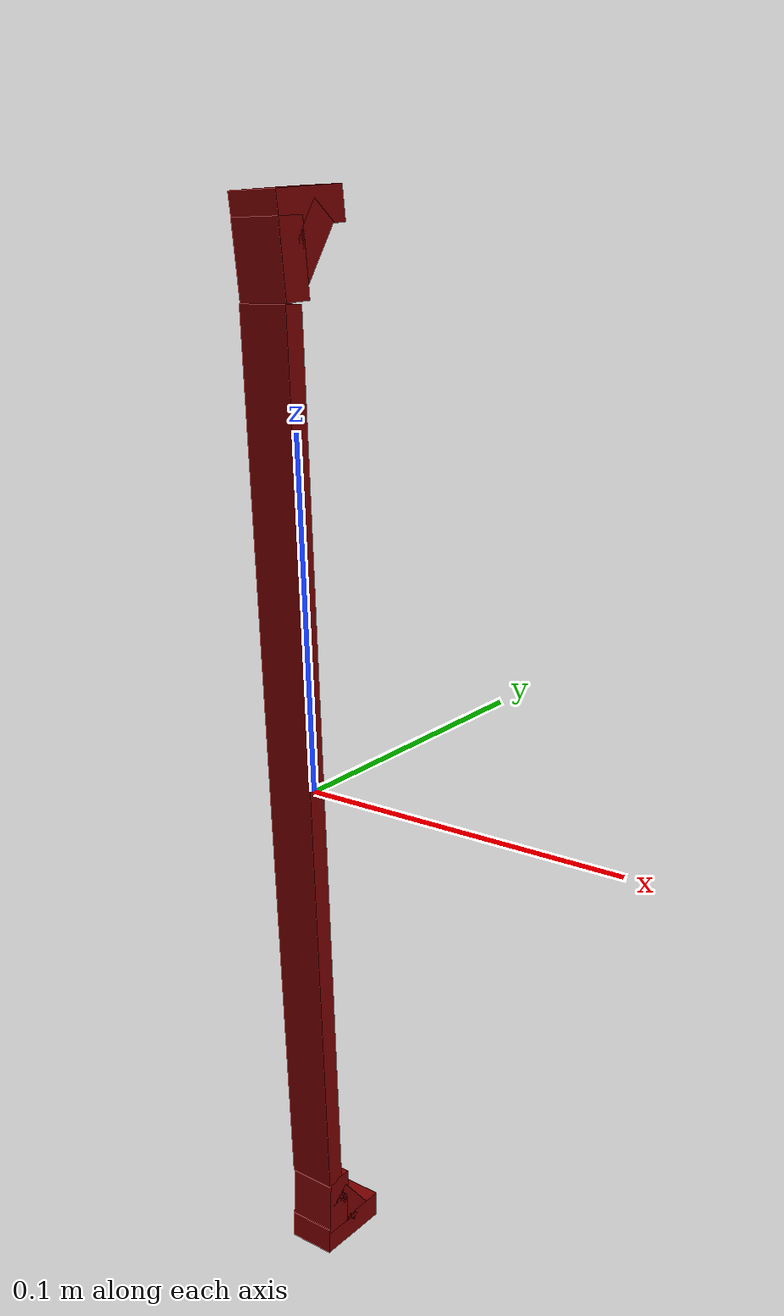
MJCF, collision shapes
<?xml version='1.0' encoding='UTF-8'?>
<mujoco model="model">
  <option timestep="0.002" gravity="0.0 0.0 -9.81"/>
  <compiler angle="radian"/>
  <asset>
    <mesh file="visuals/CabinetHandle022.obj" name="CabinetHandle022_vis"/>
    <texture file="visuals/T_BC001.png" name="tex" type="2d"/>
    <material name="mat" rgba="1 1 1 1.0" texture="tex" shininess="0.5" specular="0.3103448502657381"/>
  </asset>
  <default>
    <default class="visual">
      <geom conaffinity="0" contype="0" group="1" type="mesh"/>
    </default>
    <default class="collision">
      <geom group="0" rgba="0.5 0 0 0.5" density="1.0" solref="0.004 1" solimp="0.998 0.998 0.001"/>
    </default>
    <default class="spawn">
      <geom group="0" rgba="1 1 1 0.5" contype="0" conaffinity="0"/>
      <site group="0" rgba="1 1 1 0.5"/>
    </default>
    <default class="region">
      <geom group="1" conaffinity="0" contype="0" rgba="0 1 0 0" mass="0"/>
    </default>
  </default>
  <worldbody>
    <body>
      <body name="object">
        <geom mesh="CabinetHandle022_vis" type="mesh" solimp="0.998 0.998 0.001" solref="0.001 1" friction="0.95 0.3 0.1" class="visual" material="mat"/>
        <geom type="box" pos="0.0 -0.007515799719840288 0.0" size="0.007608635351061821 0.002940837061032653 0.13134601712226868" quat="1.0 0.0 0.0 0.0" class="collision"/>
        <geom type="box" pos="-2.9694646617311433e-20 -0.006477472372353077 0.1413654386997223" size="0.007608634885400534 0.004346541129052639 0.00958439614623785" quat="0.9993701577186584 0.03548698127269745 7.87969273667809e-18 2.277166564651398e-25" class="collision"/>
        <geom type="box" pos="-2.672512405293741e-18 0.0006776042282581329 0.15326763689517975" size="0.007608634885400534 0.004346540663391352 0.01228747796267271" quat="0.7410692572593689 -0.6714286208152771 1.603830415846416e-16 -1.0989087820322072e-17" class="collision"/>
        <geom type="box" pos="-7.93514826911214e-19 -0.00035437755286693573 0.14480537176132202" size="0.007608634885400534 0.004346541129052639 0.00958439614623785" quat="0.9513401389122009 -0.308142751455307 8.323219701939633e-17 -5.385120736419765e-18" class="collision"/>
        <geom type="box" pos="-3.402725322974168e-18 -0.006394913420081139 -0.1401718556880951" size="0.007608634885400534 0.004346541594713926 0.00958439614623785" quat="0.9989413022994995 -0.04600321128964424 2.5921823731078483e-17 -1.2831894644242968e-18" class="collision"/>
        <geom type="box" pos="-5.277049382594559e-19 0.00034737028181552887 -0.1531197875738144" size="0.007608634885400534 0.004346540663391352 0.01228747796267271" quat="0.6791898012161255 -0.7339627146720886 1.7325886882519302e-16 -1.1939366142912791e-17" class="collision"/>
        <geom type="box" pos="-2.1867230868166082e-18 -0.0006020534783601761 -0.14564825594425201" size="0.007608634885400534 0.004346541129052639 0.00958439614623785" quat="0.30554598569869995 -0.9521773457527161 2.1570550299200873e-16 -1.5167145661464138e-17" class="collision"/>
        <geom class="region" name="reg_main" type="box" pos="0.0 -4.656612873077393e-10 0.0" size="0.008575185969471932 0.013140639126300813 0.1597129682302475"/>
      </body>
    </body>
  </worldbody>
  <actuator/>
</mujoco>
